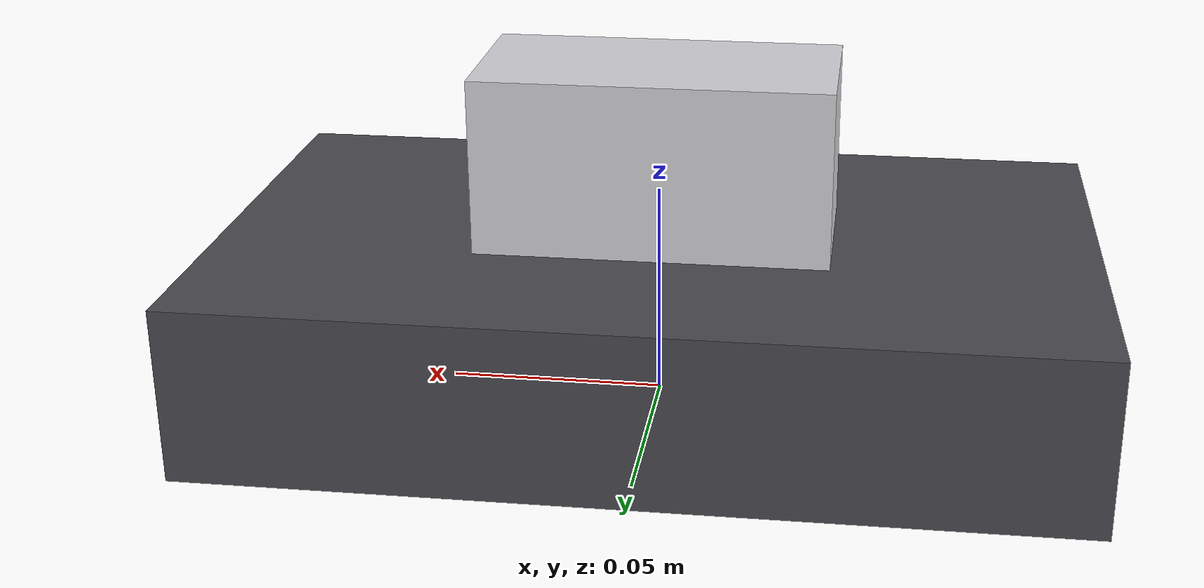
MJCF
<?xml version="1.0" encoding="utf-8"?>
<mujoco model="gram_stain_station">
  <compiler angle="radian" autolimits="true"/>
  <default>
    <default class="body"><geom contype="1" conaffinity="1"/></default>
  </default>
  <worldbody>
    <body name="base">
      <geom type="box" size="0.10 0.06 0.02" pos="0 0 0.02" rgba="0.3 0.3 0.32 1" class="body"/>
      <body name="rack" pos="0 0 0.06">
        <joint name="rack_joint" type="slide" axis="0 1 0" range="-0.04 0.04" damping="1.0" frictionloss="0.3"/>
  <geom type="box" size="0.04 0.02 0.02" pos="0 0 0" rgba="0.85 0.85 0.87 1" class="body"/>
      </body>
    </body>
  </worldbody>
</mujoco>
